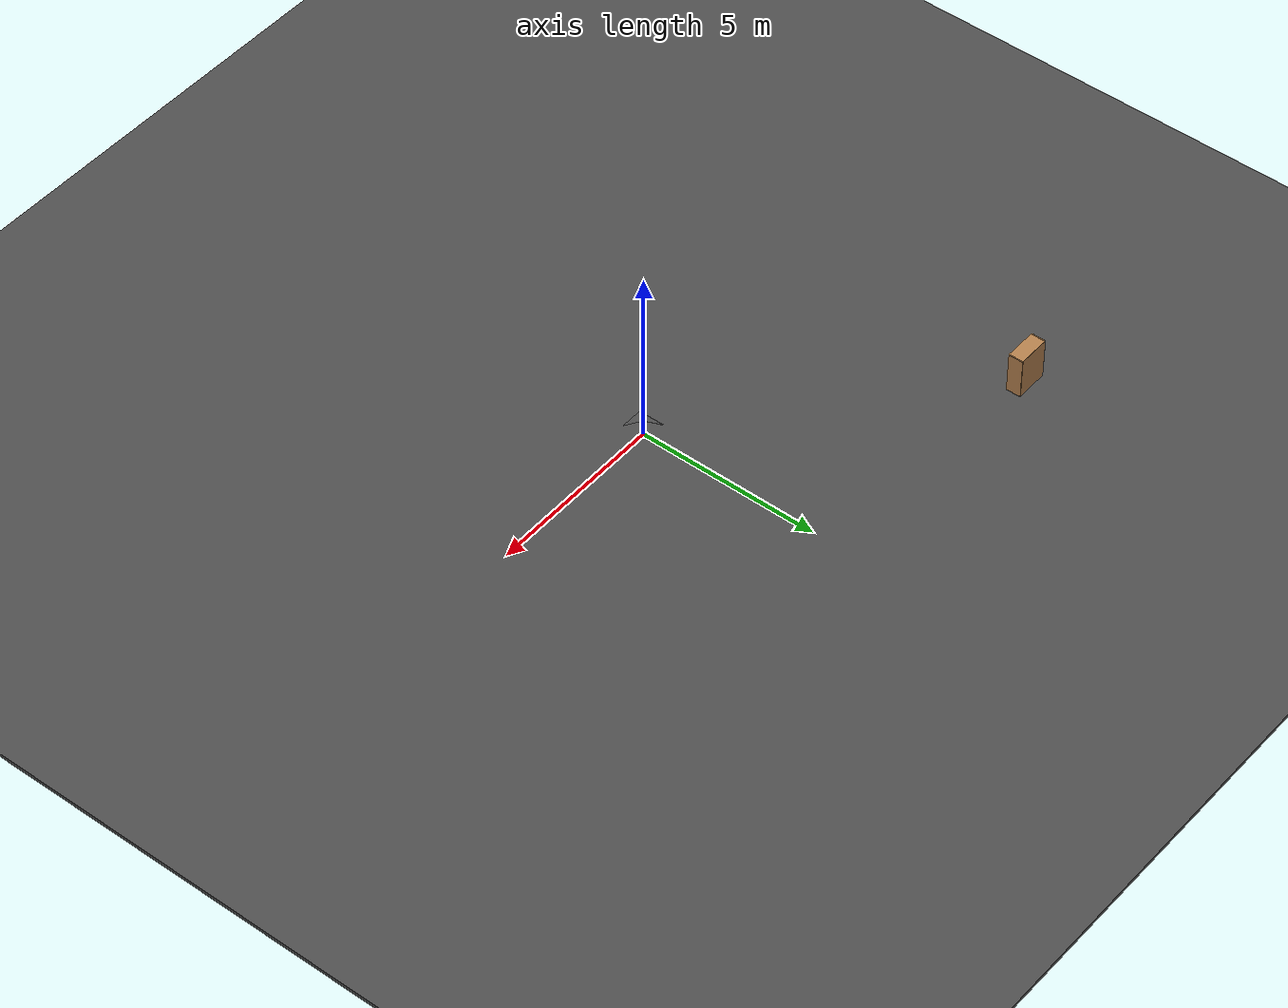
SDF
<sdf version="1.6">
 <world name="default">
  <model name="asphalt_plane">
   <static>1</static>
   <link name="link">
    <collision name="collision"><geometry><box><size>0.768356 1.16385 0.1</size></box></geometry></collision>
    <visual name="visual">
     <cast_shadows>0</cast_shadows>
     <geometry><box><size>0.768356 1.16385 0.1</size></box></geometry>
     <material>
      <script>
       <uri>model://asphalt_plane/materials/scripts</uri>
       <uri>model://asphalt_plane/materials/textures</uri>
       <name>vrc/asphalt</name>
      </script>
     </material>
    </visual>
   </link>
   <pose>-0.097876 0.053881 0 0 -0 0</pose>
  </model>
  <model name="asphalt_plane_0">
   <static>1</static>
   <link name="link">
    <collision name="collision"><geometry><box><size>20 20 0.1</size></box></geometry></collision>
    <visual name="visual">
     <cast_shadows>0</cast_shadows>
     <geometry><box><size>20 20 0.1</size></box></geometry>
     <material>
      <script>
       <uri>model://asphalt_plane/materials/scripts</uri>
       <uri>model://asphalt_plane/materials/textures</uri>
       <name>Gazebo/Grass</name>
      </script>
     </material>
    </visual>
   </link>
  </model>
  <model name="bookshelf">
   <static>1</static>
   <link name="link">
    <inertial><mass>1</mass></inertial>
    <collision name="back">
     <pose>0 0.005 0.6 0 -0 0</pose>
     <geometry><box><size>0.9 0.01 1.2</size></box></geometry>
    </collision>
    <visual name="visual1">
     <pose>0 0.005 0.6 0 -0 0</pose>
     <geometry><box><size>0.9 0.01 1.2</size></box></geometry>
     <material>
      <script><uri>file://media/materials/scripts/gazebo.material</uri><name>Gazebo/Wood</name></script>
     </material>
    </visual>
    <collision name="left_side">
     <pose>0.45 -0.195 0.6 0 -0 0</pose>
     <geometry><box><size>0.02 0.4 1.2</size></box></geometry>
    </collision>
    <visual name="visual2">
     <pose>0.45 -0.195 0.6 0 -0 0</pose>
     <geometry><box><size>0.02 0.4 1.2</size></box></geometry>
     <material>
      <script><uri>file://media/materials/scripts/gazebo.material</uri><name>Gazebo/Wood</name></script>
     </material>
    </visual>
    <collision name="right_side">
     <pose>-0.45 -0.195 0.6 0 -0 0</pose>
     <geometry><box><size>0.02 0.4 1.2</size></box></geometry>
    </collision>
    <visual name="visual3">
     <pose>-0.45 -0.195 0.6 0 -0 0</pose>
     <geometry><box><size>0.02 0.4 1.2</size></box></geometry>
     <material>
      <script><uri>file://media/materials/scripts/gazebo.material</uri><name>Gazebo/Wood</name></script>
     </material>
    </visual>
    <collision name="bottom">
     <pose>0 -0.195 0.03 0 -0 0</pose>
     <geometry><box><size>0.88 0.4 0.06</size></box></geometry>
    </collision>
    <visual name="visual4">
     <pose>0 -0.195 0.03 0 -0 0</pose>
     <geometry><box><size>0.88 0.4 0.06</size></box></geometry>
     <material>
      <script><uri>file://media/materials/scripts/gazebo.material</uri><name>Gazebo/Wood</name></script>
     </material>
    </visual>
    <collision name="top">
     <pose>0 -0.195 1.19 0 -0 0</pose>
     <geometry><box><size>0.88 0.4 0.02</size></box></geometry>
    </collision>
    <visual name="visual5">
     <pose>0 -0.195 1.19 0 -0 0</pose>
     <geometry><box><size>0.88 0.4 0.02</size></box></geometry>
     <material>
      <script><uri>file://media/materials/scripts/gazebo.material</uri><name>Gazebo/Wood</name></script>
     </material>
    </visual>
    <collision name="low_shelf">
     <pose>0 -0.195 0.43 0 -0 0</pose>
     <geometry><box><size>0.88 0.4 0.02</size></box></geometry>
    </collision>
    <visual name="visual6">
     <pose>0 -0.195 0.43 0 -0 0</pose>
     <geometry><box><size>0.88 0.4 0.02</size></box></geometry>
     <material>
      <script><uri>file://media/materials/scripts/gazebo.material</uri><name>Gazebo/Wood</name></script>
     </material>
    </visual>
    <collision name="high_shelf">
     <pose>0 -0.195 0.8 0 -0 0</pose>
     <geometry><box><size>0.88 0.4 0.02</size></box></geometry>
    </collision>
    <visual name="visual7">
     <pose>0 -0.195 0.8 0 -0 0</pose>
     <geometry><box><size>0.88 0.4 0.02</size></box></geometry>
     <material>
      <script><uri>file://media/materials/scripts/gazebo.material</uri><name>Gazebo/Wood</name></script>
     </material>
    </visual>
   </link>
   <pose>-6.96296 6.14719 0 0 -0 0</pose>
  </model>
  <model name="asphalt_plane_1">
   <static>1</static>
   <link name="link">
    <collision name="collision"><geometry><box><size>126.396 128.907 0.1</size></box></geometry></collision>
    <visual name="visual">
     <cast_shadows>0</cast_shadows>
     <geometry><box><size>126.396 128.907 0.1</size></box></geometry>
     <material>
      <script>
       <uri>model://asphalt_plane/materials/scripts</uri>
       <uri>model://asphalt_plane/materials/textures</uri>
       <name>vrc/asphalt</name>
      </script>
     </material>
    </visual>
   </link>
   <pose>-0.152597 0.278289 0 0 -0 0</pose>
  </model>
 </world>
</sdf>
